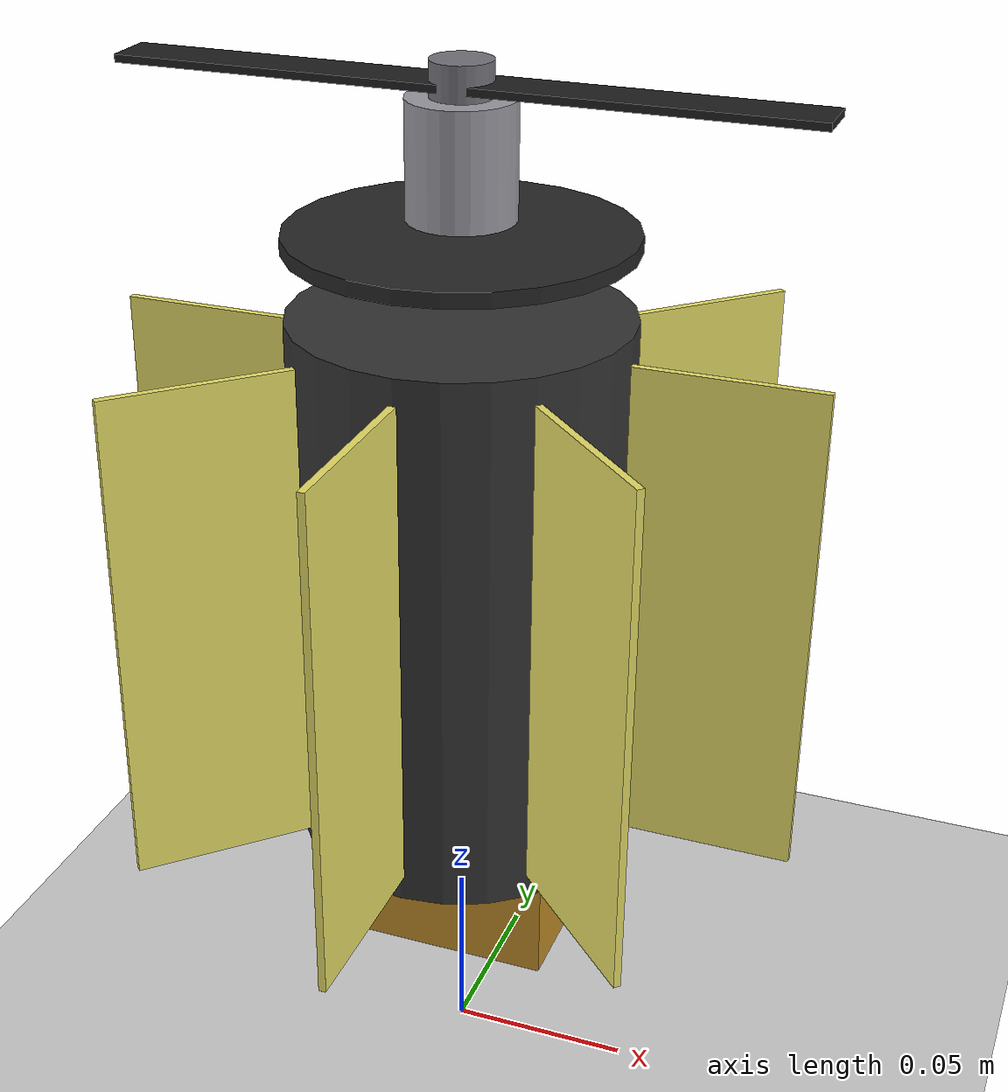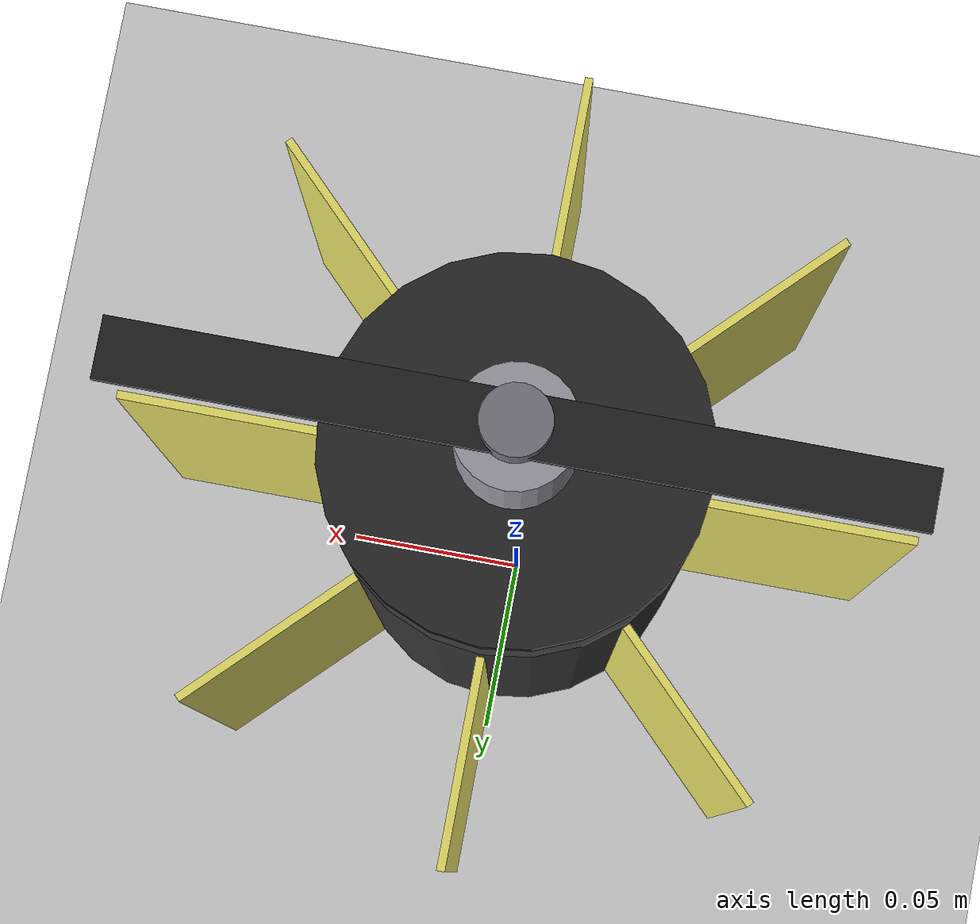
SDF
<?xml version="1.0"?>
<sdf version="1.9">
  <world name="monospinner_default">
    <physics name="1ms" type="ignored">
      <max_step_size>0.001</max_step_size>
      <real_time_factor>1.0</real_time_factor>
    </physics>

    <plugin filename="gz-sim-physics-system" name="gz::sim::systems::Physics"/>
    <plugin filename="gz-sim-sensors-system" name="gz::sim::systems::Sensors">
      <render_engine>ogre2</render_engine>
    </plugin>
    <plugin filename="gz-sim-user-commands-system" name="gz::sim::systems::UserCommands"/>
    <plugin filename="gz-sim-scene-broadcaster-system" name="gz::sim::systems::SceneBroadcaster"/>
    <plugin filename="gz-sim-air-pressure-system" name="gz::sim::systems::AirPressure"/>
    <plugin filename="gz-sim-navsat-system" name="gz::sim::systems::NavSat"/>
    <plugin filename="gz-sim-magnetometer-system" name="gz::sim::systems::Magnetometer"/>

    <light type="directional" name="sun">
      <cast_shadows>true</cast_shadows>
      <pose>0 0 10 0 0 0</pose>
      <diffuse>0.8 0.8 0.8 1</diffuse>
      <specular>0.2 0.2 0.2 1</specular>
      <direction>-0.5 0.1 -0.9</direction>
    </light>

    <model name="ground_plane">
      <static>true</static>
      <link name="link">
        <collision name="collision">
          <geometry>
            <plane>
              <normal>0 0 1</normal>
            </plane>
          </geometry>
        </collision>
        <visual name="visual">
          <geometry>
            <plane>
              <normal>0 0 1</normal>
              <size>100 100</size>
            </plane>
          </geometry>
        </visual>
      </link>
    </model>

    <include>
      <uri>model://monospinner</uri>
      <name>monospinner</name>
      <pose>0 0 0.2 0 0 0</pose>
    </include>

    <spherical_coordinates>
      <surface_model>EARTH_WGS84</surface_model>
      <world_frame_orientation>ENU</world_frame_orientation>
      <latitude_deg>47.397971057728974</latitude_deg>
      <longitude_deg> 8.546163739800146</longitude_deg>
      <elevation>0</elevation>
    </spherical_coordinates>

  </world>
</sdf>

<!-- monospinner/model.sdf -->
<sdf version="1.9">
  <model name="monospinner">
    <pose>0 0 0.2 0 0 0</pose>

    <link name="base_link">
      <inertial>
        <pose>0 0 0 0 0 0</pose>
        <mass>0.2100</mass>
        <inertia>
          <ixx>0.0010026</ixx>
          <iyy>0.0010026</iyy>
          <izz>0.0001831</izz>
          <ixy>0</ixy><ixz>0</ixz><iyz>0</iyz>
        </inertia>
      </inertial> <!-- check -->

      <!-- Single collision primitive covering the whole airframe envelope.
           Radius = fin tip radius.  Never use mesh collision on this vehicle. -->
      <collision name="base_collision">
        <pose>0 0 -0.040 0 0 0</pose>
        <geometry>
          <cylinder><radius>0.095</radius><length>0.260</length></cylinder>
        </geometry>
      </collision>

      <!-- Cylindrical fuselage ALL VISUAL -->
      <visual name="fuselage_visual" >
        <pose>0 0 -0.050 0 0 0</pose>
        <geometry>
          <cylinder><radius>0.045</radius><length>0.150</length></cylinder>
        </geometry>
        <material>
          <ambient>0.15 0.15 0.15 1</ambient>
          <diffuse>0.20 0.20 0.20 1</diffuse>
        </material>
      </visual>

      <!-- Motor mount platform ALL VISUAL -->
      <visual name="platform_visual">
        <pose>0 0 0.045 0 0 0</pose>
        <geometry>
          <cylinder><radius>0.045</radius><length>0.004</length></cylinder>
        </geometry>
        <material>
          <ambient>0.10 0.10 0.10 1</ambient>
          <diffuse>0.15 0.15 0.15 1</diffuse>
        </material>
      </visual>

      <!-- Brushless motor stator ALL VISUAL -->
      <visual name="motor_visual">
        <pose>0 0 0.065 0 0 0</pose>
        <geometry>
          <cylinder><radius>0.014</radius><length>0.030</length></cylinder>
        </geometry>
        <material>
          <ambient>0.45 0.45 0.48 1</ambient>
          <diffuse>0.60 0.60 0.63 1</diffuse>
        </material>
      </visual>

      <visual name="fin_0">
        <pose>0.070 0 -0.050 0 0 0</pose>
        <geometry><box><size>0.050 0.002 0.136</size></box></geometry>
        <material><ambient>0.85 0.82 0.35 1</ambient><diffuse>0.90 0.87 0.40 1</diffuse></material>
      </visual>
      <visual name="fin_1">
        <pose>0.0495 0.0495 -0.050 0 0 0.7853982</pose>
        <geometry><box><size>0.050 0.002 0.136</size></box></geometry>
        <material><ambient>0.85 0.82 0.35 1</ambient><diffuse>0.90 0.87 0.40 1</diffuse></material>
      </visual>
      <visual name="fin_2">
        <pose>0 0.070 -0.050 0 0 1.5707963</pose>
        <geometry><box><size>0.050 0.002 0.136</size></box></geometry>
        <material><ambient>0.85 0.82 0.35 1</ambient><diffuse>0.90 0.87 0.40 1</diffuse></material>
      </visual>
      <visual name="fin_3">
        <pose>-0.0495 0.0495 -0.050 0 0 2.3561945</pose>
        <geometry><box><size>0.050 0.002 0.136</size></box></geometry>
        <material><ambient>0.85 0.82 0.35 1</ambient><diffuse>0.90 0.87 0.40 1</diffuse></material>
      </visual>
      <visual name="fin_4">
        <pose>-0.070 0 -0.050 0 0 0</pose>
        <geometry><box><size>0.050 0.002 0.136</size></box></geometry>
        <material><ambient>0.85 0.82 0.35 1</ambient><diffuse>0.90 0.87 0.40 1</diffuse></material>
      </visual>
      <visual name="fin_5">
        <pose>-0.0495 -0.0495 -0.050 0 0 0.7853982</pose>
        <geometry><box><size>0.050 0.002 0.136</size></box></geometry>
        <material><ambient>0.85 0.82 0.35 1</ambient><diffuse>0.90 0.87 0.40 1</diffuse></material>
      </visual>
      <visual name="fin_6">
        <pose>0 -0.070 -0.050 0 0 1.5707963</pose>
        <geometry><box><size>0.050 0.002 0.136</size></box></geometry>
        <material><ambient>0.85 0.82 0.35 1</ambient><diffuse>0.90 0.87 0.40 1</diffuse></material>
      </visual>
      <visual name="fin_7">
        <pose>0.0495 -0.0495 -0.050 0 0 2.3561945</pose>
        <geometry><box><size>0.050 0.002 0.136</size></box></geometry>
        <material><ambient>0.85 0.82 0.35 1</ambient><diffuse>0.90 0.87 0.40 1</diffuse></material>
      </visual>

      <sensor name="air_pressure_sensor" type="air_pressure"> <!--air pressure is in the right place-->
        <pose>0 0 0 0 0 0</pose>
        <always_on>1</always_on>
        <update_rate>50</update_rate>
        <air_pressure>
          <pressure>
            <noise type="gaussian"><mean>0</mean><stddev>0.01</stddev></noise>
          </pressure>
        </air_pressure>
      </sensor>

      <sensor name="navsat_sensor" type="navsat"> <!--gps is in the right place-->
        <pose>0 0 0 0 0 0</pose>
        <always_on>1</always_on>
        <update_rate>30</update_rate>
      </sensor>
    </link>

    <link name="battery">
      <pose>0 0 -0.145 0 0 0</pose> <!-- This is correct -->
      <inertial>
        <pose>0 0 0 0 0 0</pose>
        <mass>0.2007</mass>
        <inertia>
          <ixx>0.0001794</ixx>
          <iyy>0.0000387</iyy>
          <izz>0.0001928</izz>
          <ixy>0</ixy><ixz>0</ixz><iyz>0</iyz>
        </inertia>
      </inertial>
      <visual name="battery_visual">
        <geometry><box><size>0.062 0.040 0.030</size></box></geometry>
        <material>
          <ambient>0.55 0.40 0.10 1</ambient>
          <diffuse>0.75 0.55 0.15 1</diffuse>
        </material>
      </visual>
    </link>

    <joint name="battery_joint" type="fixed">
      <parent>base_link</parent>
      <child>battery</child>
    </joint>

    <link name="rotor">
      <pose>0 0 0.083 0 0 0</pose>
      <inertial>
        <pose>0 0 0 0 0 0</pose>
        <mass>0.0067</mass>
        <inertia>
          <ixx>0.0000052</ixx>   <!-- Jpd -->
          <iyy>0.0000052</iyy>   <!-- Jpd -->
          <izz>0.0000104</izz>   <!-- Jpz = 2*Jpd, corrected; see header -->
          <ixy>0</ixy><ixz>0</ixz><iyz>0</iyz>
        </inertia>
      </inertial>
      <visual name="hub_visual">
        <geometry><cylinder><radius>0.008</radius><length>0.012</length></cylinder></geometry>
        <material><ambient>0.30 0.30 0.32 1</ambient><diffuse>0.45 0.45 0.48 1</diffuse></material>
      </visual>
      <visual name="blade_visual">
        <geometry><box><size>0.180 0.014 0.002</size></box></geometry>
        <material><ambient>0.08 0.08 0.08 1</ambient><diffuse>0.12 0.12 0.12 1</diffuse></material>
      </visual>
    </link>

    <joint name="rotor_joint" type="fixed">
      <parent>base_link</parent>
      <child>rotor</child>
    </joint>

    <plugin filename="gz_monospinner_plugin" name="monospinner::ThrustVectorActuator">

      <!-- Wrenches are applied to this link; all offsets are in its frame. -->
      <link_name>base_link</link_name>
      <rotor_visual_link>rotor</rotor_visual_link>

      <!-- Geometry (paper Table 1) -->
      <h_P>0.083</h_P>                    <!-- rotor above F_B, m -->
      <h_S>0.145</h_S>                    <!-- battery below F_B, m -->

      <!-- Rotor aerodynamic coefficients (paper Table 1, Eq. 24-25) -->
      <k_f>5.2400e-6</k_f>                <!-- f_p = k_f * gamma_dot^2, kg m -->
      <k_tau>1.0800e-8</k_tau>            <!-- tau_p = k_tau * gamma_dot^2, kg m^2 -->
      <!-- k = k_tau / k_f, m; tau_p = k * f_p -->

      <!-- Body aerodynamic drag (paper Eq. 31-33), 8-fin prototype -->
      <K_z>2.80908e-5</K_z>               <!-- tau = -sign(wz) * K_z * wz^2 -->

      <!-- Rotor inertia for the gyroscopic term (paper Eq. 44) -->
      <J_pz>1.04e-5</J_pz>                <!-- CORRECTED to 2*J_pd (triangle-inequality
                                               equality); Table 1 prints 1.061e-4 -->
      <J_pd>5.2e-6</J_pd>                 <!-- unused by the wrench; kept for reference -->

      <m_b>0.2100</m_b>
      <m_s>0.2007</m_s>
      <m_p>0.0067</m_p>

      <!-- Control set limits (paper Sec. 7.1, Eq. 80) -->
      <alpha_max_deg>30.0</alpha_max_deg> <!-- tilt cone half-angle -->
      <lambda_max>1.2</lambda_max>        <!-- max gamma_dot / Omega_hover -->
      <Omega_hover>945.0</Omega_hover>    <!-- paper Table 2; but sqrt(m g / k_f)
                                               with Table 1 values gives 883.8.
                                               See notes. -->

      <!-- Actuator dynamics. First-order placeholder; the tilt channel is
           physically second-order and rotor-speed-scheduled. -->
      <tau_thrust>0.05</tau_thrust>
      <tau_tilt>0.03</tau_tilt>

      <visual_spin_rate>25.0</visual_spin_rate>
      <visual_tilt_gain>1.0</visual_tilt_gain>

    </plugin>

    <plugin filename="gz_imu_realism_plugin" name="monospinner::ImuPhysical">
      <link_name>base_link</link_name>
      <topic>/world/monospinner_default/model/monospinner/link/base_link/sensor/imu_sensor/imu</topic>
      <update_rate>250</update_rate>
      <gyro_noise_stddev>0.0008726646</gyro_noise_stddev>
      <accel_noise_stddev>0.00686</accel_noise_stddev>

      <gyro_bias_stddev>0.00873</gyro_bias_stddev>
      <gyro_bias_correlation_time>1000</gyro_bias_correlation_time>
      <accel_bias_stddev>0.196</accel_bias_stddev>
      <accel_bias_correlation_time>1000</accel_bias_correlation_time>

      <gyro_saturation>69.81</gyro_saturation>
      <accel_saturation>313.8</accel_saturation>

      <seed>0</seed>

      <!--debugging-->
      <publish_ground_truth>true</publish_ground_truth>
      <ground_truth_topic>/model/monospinner/imu_gd_truth</ground_truth_topic>

    </plugin>
    <plugin filename="gz_magnetometer_realism_plugin" name="monospinner::MagnetometerPhysical">
      <link_name>base_link</link_name>
      <topic>/world/monospinner_default/model/monospinner/link/base_link/sensor/magnetometer_sensor/magnetometer</topic>
      <update_rate>100</update_rate>

      <world_magnetic_field>0.01294 0.21743 -0.43041</world_magnetic_field>

      <magnetometer_noise_stddev>0.003</magnetometer_noise_stddev>

      <magnetometer_bias_stddev>0.005</magnetometer_bias_stddev>
      <magnetometer_bias_correlation_time>1000</magnetometer_bias_correlation_time>
    </plugin>
    <plugin filename="gz-sim-odometry-publisher-system"
            name="gz::sim::systems::OdometryPublisher">
      <dimensions>3</dimensions>
      <robot_base_frame>base_link</robot_base_frame>
      <odom_frame>monospinner/odom</odom_frame>
      <odom_publish_frequency>1000</odom_publish_frequency>
      <!-- Set explicitly rather than relying on the default "/model/" + name +
           "/odometry", so the recorder and this file cannot drift apart. -->
      <odom_topic>/model/monospinner/odometry</odom_topic>
    </plugin>
  </model>
</sdf>
